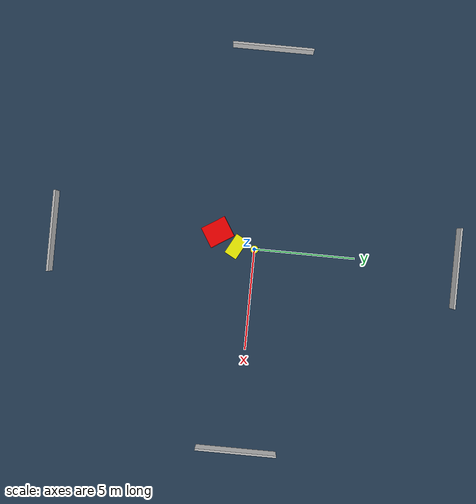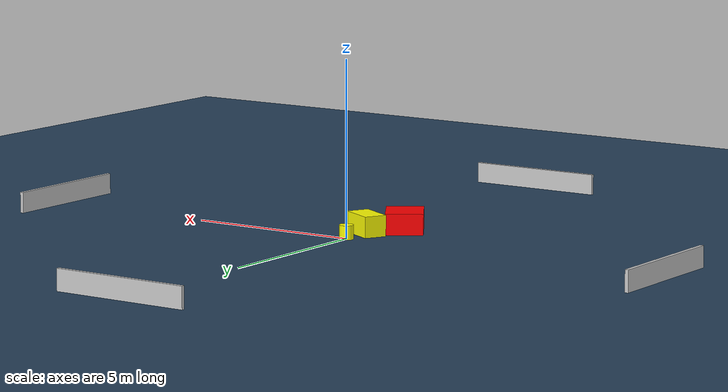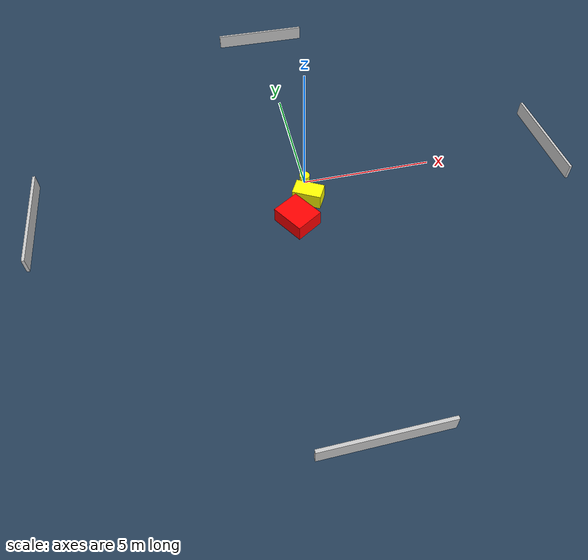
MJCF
<?xml version="1.0" ?>
<mujoco model="generated_environment">
  <option timestep="0.01" integrator="RK4" cone="elliptic"/>
  <default>
    <geom density="1"/>
  </default>
  <asset>
    <texture builtin="gradient" height="3072" name="skybox" rgb1="0.3 0.5 0.7" rgb2="0 0 0" type="skybox" width="512"/>
    <texture builtin="checker" height="300" name="groundplane" rgb1="0.2 0.3 0.4" rgb2="0.1 0.2 0.3" type="2d" width="300"/>
    <material name="groundplane" reflectance="0.2" texrepeat="5 5" texture="groundplane"/>
  </asset>
  <worldbody>
    <light dir="0 0 -1" directional="true" pos="0 0 1.5"/>
    <geom condim="3" friction="0.5 0.005 0.001" material="groundplane" name="floor" pos="0 0 0" size="0 0 0.05" type="plane"/>
    <body name="walls">
      <geom name="wall_1" condim="4" pos="-10.0 0.0 0.3" rgba="0.800000011920929 0.800000011920929 0.800000011920929 1.0" size="0.05 2.0 0.3" type="box"/>
      <geom name="wall_2" condim="4" pos="10.0 0.0 0.3" rgba="0.800000011920929 0.800000011920929 0.800000011920929 1.0" size="0.05 2.0 0.3" type="box"/>
      <geom name="wall_3" condim="4" pos="0.0 -10.0 0.3" rgba="0.800000011920929 0.800000011920929 0.800000011920929 1.0" size="2.0 0.05 0.3" type="box"/>
      <geom name="wall_4" condim="4" pos="0.0 10.0 0.3" rgba="0.800000011920929 0.800000011920929 0.800000011920929 1.0" size="2.0 0.05 0.3" type="box"/>
    </body>
    <body name="robot">
      <joint name="joint_x" type="slide" pos="0 0 0" axis="1 0 0"/>
      <joint name="joint_y" type="slide" pos="0 0 0" axis="0 1 0"/>
      <geom name="robot" type="cylinder" pos="0.0 0.0 0.2" size="0.2 0.2 0.0" mass="5.0" friction="1.0 0.005 0.0001" condim="4" rgba="1.0 1.0 0.0 1.0"/>
    </body>
    <body name="obstacle_1_movable">
      <geom name="obstacle_1_movable" condim="4" pos="-0.05948505625137062 -0.898081241936369 0.3" euler="0 0 241.69286671792514" friction="0.0 0.005 0.001" rgba="1.0 1.0 0.0 1.0" size="0.3232249117559951 0.5384061050237563 0.3" type="box" mass="0.1"/>
      <joint type="free"/>
    </body>
    <body name="obstacle_2_static">
      <geom name="obstacle_2_static" condim="4" pos="-0.6850260851460452 -1.8703125056163032 0.3" euler="0 0 212.34145357576264" friction="0.0 0.005 0.001" rgba="1.0 0.0 0.0 1.0" size="0.5325309466662311 0.6392622017828122 0.3" type="box"/>
    </body>
  </worldbody>
  <actuator>
    <motor name="actuator_x" joint="joint_x" gear="1" ctrlrange="-1 1"/>
    <motor name="actuator_y" joint="joint_y" gear="1" ctrlrange="-1 1"/>
  </actuator>
</mujoco>
